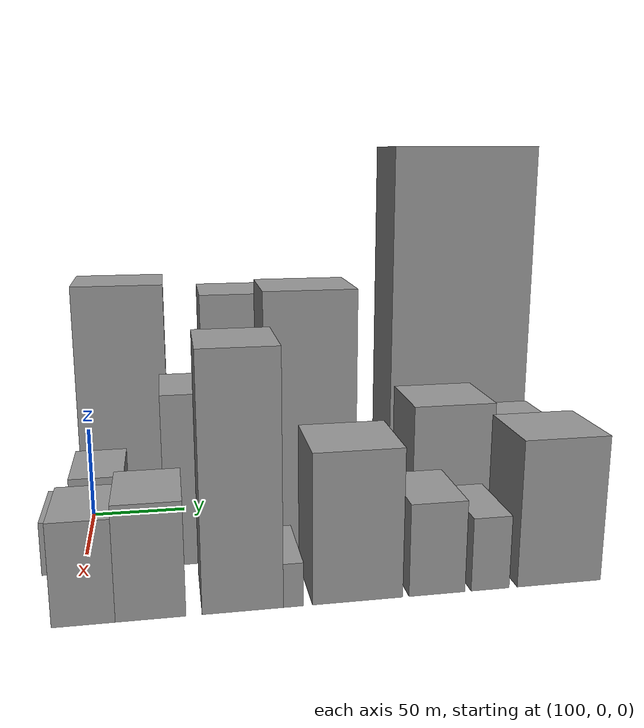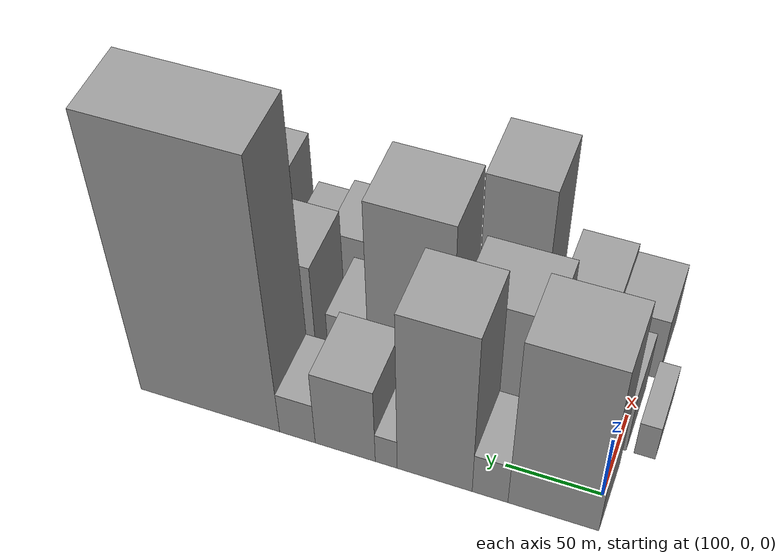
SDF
<sdf version="1.6">
 <world name="default">
  <model name="building_15">
   <static>1</static>
   <pose>100.0000 19.6133 0 0.000000 0.000000 0.000000</pose>
   <link name="link">
    <pose>0 0 66.00 0 0 0</pose>
    <collision name="collision"><geometry><box><size>40.0000 46.2009 132.0000</size></box></geometry></collision>
    <visual name="visual">
     <cast_shadows>0</cast_shadows>
     <geometry><box><size>40.0000 46.2009 132.0000</size></box></geometry>
     <material>
      <script>
       <uri>model://grey_wall/materials/scripts</uri>
       <uri>model://grey_wall/materials/textures</uri>
       <name>vrc/grey_wall</name>
      </script>
     </material>
    </visual>
   </link>
  </model>
  <model name="building_16">
   <static>1</static>
   <pose>100.0000 51.9696 0 0.000000 0.000000 0.000000</pose>
   <link name="link">
    <pose>0 0 16.50 0 0 0</pose>
    <collision name="collision"><geometry><box><size>40.0000 18.5116 33.0000</size></box></geometry></collision>
    <visual name="visual">
     <cast_shadows>0</cast_shadows>
     <geometry><box><size>40.0000 18.5116 33.0000</size></box></geometry>
     <material>
      <script>
       <uri>model://grey_wall/materials/scripts</uri>
       <uri>model://grey_wall/materials/textures</uri>
       <name>vrc/grey_wall</name>
      </script>
     </material>
    </visual>
   </link>
  </model>
  <model name="building_17">
   <static>1</static>
   <pose>100.0000 80.9882 0 0.000000 0.000000 0.000000</pose>
   <link name="link">
    <pose>0 0 63.00 0 0 0</pose>
    <collision name="collision"><geometry><box><size>40.0000 39.5256 126.0000</size></box></geometry></collision>
    <visual name="visual">
     <cast_shadows>0</cast_shadows>
     <geometry><box><size>40.0000 39.5256 126.0000</size></box></geometry>
     <material>
      <script>
       <uri>model://grey_wall/materials/scripts</uri>
       <uri>model://grey_wall/materials/textures</uri>
       <name>vrc/grey_wall</name>
      </script>
     </material>
    </visual>
   </link>
  </model>
  <model name="building_18">
   <static>1</static>
   <pose>100.0000 106.6039 0 0.000000 0.000000 0.000000</pose>
   <link name="link">
    <pose>0 0 12.00 0 0 0</pose>
    <collision name="collision"><geometry><box><size>40.0000 11.7060 24.0000</size></box></geometry></collision>
    <visual name="visual">
     <cast_shadows>0</cast_shadows>
     <geometry><box><size>40.0000 11.7060 24.0000</size></box></geometry>
     <material>
      <script>
       <uri>model://grey_wall/materials/scripts</uri>
       <uri>model://grey_wall/materials/textures</uri>
       <name>vrc/grey_wall</name>
      </script>
     </material>
    </visual>
   </link>
  </model>
  <model name="building_19">
   <static>1</static>
   <pose>100.0000 128.7293 0 0.000000 0.000000 0.000000</pose>
   <link name="link">
    <pose>0 0 30.00 0 0 0</pose>
    <collision name="collision"><geometry><box><size>40.0000 32.5449 60.0000</size></box></geometry></collision>
    <visual name="visual">
     <cast_shadows>0</cast_shadows>
     <geometry><box><size>40.0000 32.5449 60.0000</size></box></geometry>
     <material>
      <script>
       <uri>model://grey_wall/materials/scripts</uri>
       <uri>model://grey_wall/materials/textures</uri>
       <name>vrc/grey_wall</name>
      </script>
     </material>
    </visual>
   </link>
  </model>
  <model name="building_20">
   <static>1</static>
   <pose>100.0000 154.8038 0 0.000000 0.000000 0.000000</pose>
   <link name="link">
    <pose>0 0 16.50 0 0 0</pose>
    <collision name="collision"><geometry><box><size>40.0000 19.6040 33.0000</size></box></geometry></collision>
    <visual name="visual">
     <cast_shadows>0</cast_shadows>
     <geometry><box><size>40.0000 19.6040 33.0000</size></box></geometry>
     <material>
      <script>
       <uri>model://grey_wall/materials/scripts</uri>
       <uri>model://grey_wall/materials/textures</uri>
       <name>vrc/grey_wall</name>
      </script>
     </material>
    </visual>
   </link>
  </model>
  <model name="building_21">
   <static>1</static>
   <pose>100.0000 203.8623 0 0.000000 0.000000 0.000000</pose>
   <link name="link">
    <pose>0 0 100.50 0 0 0</pose>
    <collision name="collision"><geometry><box><size>40.0000 78.5130 201.0000</size></box></geometry></collision>
    <visual name="visual">
     <cast_shadows>0</cast_shadows>
     <geometry><box><size>40.0000 78.5130 201.0000</size></box></geometry>
     <material>
      <script>
       <uri>model://grey_wall/materials/scripts</uri>
       <uri>model://grey_wall/materials/textures</uri>
       <name>vrc/grey_wall</name>
      </script>
     </material>
    </visual>
   </link>
  </model>
  <model name="building_44">
   <static>1</static>
   <pose>149.0000 -14.0285 0 0.000000 0.000000 0.000000</pose>
   <link name="link">
    <pose>0 0 13.50 0 0 0</pose>
    <collision name="collision"><geometry><box><size>40.0000 11.0180 27.0000</size></box></geometry></collision>
    <visual name="visual">
     <cast_shadows>0</cast_shadows>
     <geometry><box><size>40.0000 11.0180 27.0000</size></box></geometry>
     <material>
      <script>
       <uri>model://grey_wall/materials/scripts</uri>
       <uri>model://grey_wall/materials/textures</uri>
       <name>vrc/grey_wall</name>
      </script>
     </material>
    </visual>
   </link>
  </model>
  <model name="building_45">
   <static>1</static>
   <pose>149.0000 8.3008 0 0.000000 0.000000 0.000000</pose>
   <link name="link">
    <pose>0 0 24.00 0 0 0</pose>
    <collision name="collision"><geometry><box><size>40.0000 25.6407 48.0000</size></box></geometry></collision>
    <visual name="visual">
     <cast_shadows>0</cast_shadows>
     <geometry><box><size>40.0000 25.6407 48.0000</size></box></geometry>
     <material>
      <script>
       <uri>model://grey_wall/materials/scripts</uri>
       <uri>model://grey_wall/materials/textures</uri>
       <name>vrc/grey_wall</name>
      </script>
     </material>
    </visual>
   </link>
  </model>
  <model name="building_46">
   <static>1</static>
   <pose>149.0000 27.7729 0 0.000000 0.000000 0.000000</pose>
   <link name="link">
    <pose>0 0 13.50 0 0 0</pose>
    <collision name="collision"><geometry><box><size>40.0000 13.3035 27.0000</size></box></geometry></collision>
    <visual name="visual">
     <cast_shadows>0</cast_shadows>
     <geometry><box><size>40.0000 13.3035 27.0000</size></box></geometry>
     <material>
      <script>
       <uri>model://grey_wall/materials/scripts</uri>
       <uri>model://grey_wall/materials/textures</uri>
       <name>vrc/grey_wall</name>
      </script>
     </material>
    </visual>
   </link>
  </model>
  <model name="building_47">
   <static>1</static>
   <pose>149.0000 62.6030 0 0.000000 0.000000 0.000000</pose>
   <link name="link">
    <pose>0 0 43.50 0 0 0</pose>
    <collision name="collision"><geometry><box><size>40.0000 46.3568 87.0000</size></box></geometry></collision>
    <visual name="visual">
     <cast_shadows>0</cast_shadows>
     <geometry><box><size>40.0000 46.3568 87.0000</size></box></geometry>
     <material>
      <script>
       <uri>model://grey_wall/materials/scripts</uri>
       <uri>model://grey_wall/materials/textures</uri>
       <name>vrc/grey_wall</name>
      </script>
     </material>
    </visual>
   </link>
  </model>
  <model name="building_48">
   <static>1</static>
   <pose>149.0000 111.6222 0 0.000000 0.000000 0.000000</pose>
   <link name="link">
    <pose>0 0 67.50 0 0 0</pose>
    <collision name="collision"><geometry><box><size>40.0000 45.6815 135.0000</size></box></geometry></collision>
    <visual name="visual">
     <cast_shadows>0</cast_shadows>
     <geometry><box><size>40.0000 45.6815 135.0000</size></box></geometry>
     <material>
      <script>
       <uri>model://grey_wall/materials/scripts</uri>
       <uri>model://grey_wall/materials/textures</uri>
       <name>vrc/grey_wall</name>
      </script>
     </material>
    </visual>
   </link>
  </model>
  <model name="building_49">
   <static>1</static>
   <pose>149.0000 145.8154 0 0.000000 0.000000 0.000000</pose>
   <link name="link">
    <pose>0 0 21.00 0 0 0</pose>
    <collision name="collision"><geometry><box><size>40.0000 22.7050 42.0000</size></box></geometry></collision>
    <visual name="visual">
     <cast_shadows>0</cast_shadows>
     <geometry><box><size>40.0000 22.7050 42.0000</size></box></geometry>
     <material>
      <script>
       <uri>model://grey_wall/materials/scripts</uri>
       <uri>model://grey_wall/materials/textures</uri>
       <name>vrc/grey_wall</name>
      </script>
     </material>
    </visual>
   </link>
  </model>
  <model name="building_50">
   <static>1</static>
   <pose>149.0000 185.4181 0 0.000000 0.000000 0.000000</pose>
   <link name="link">
    <pose>0 0 37.50 0 0 0</pose>
    <collision name="collision"><geometry><box><size>40.0000 42.5003 75.0000</size></box></geometry></collision>
    <visual name="visual">
     <cast_shadows>0</cast_shadows>
     <geometry><box><size>40.0000 42.5003 75.0000</size></box></geometry>
     <material>
      <script>
       <uri>model://grey_wall/materials/scripts</uri>
       <uri>model://grey_wall/materials/textures</uri>
       <name>vrc/grey_wall</name>
      </script>
     </material>
    </visual>
   </link>
  </model>
  <model name="building_51">
   <static>1</static>
   <pose>149.0000 223.2690 0 0.000000 0.000000 0.000000</pose>
   <link name="link">
    <pose>0 0 31.50 0 0 0</pose>
    <collision name="collision"><geometry><box><size>40.0000 33.2016 63.0000</size></box></geometry></collision>
    <visual name="visual">
     <cast_shadows>0</cast_shadows>
     <geometry><box><size>40.0000 33.2016 63.0000</size></box></geometry>
     <material>
      <script>
       <uri>model://grey_wall/materials/scripts</uri>
       <uri>model://grey_wall/materials/textures</uri>
       <name>vrc/grey_wall</name>
      </script>
     </material>
    </visual>
   </link>
  </model>
  <model name="building_80">
   <static>1</static>
   <pose>198.0000 4.0115 0 0.000000 0.000000 0.000000</pose>
   <link name="link">
    <pose>0 0 24.00 0 0 0</pose>
    <collision name="collision"><geometry><box><size>40.0000 26.8633 48.0000</size></box></geometry></collision>
    <visual name="visual">
     <cast_shadows>0</cast_shadows>
     <geometry><box><size>40.0000 26.8633 48.0000</size></box></geometry>
     <material>
      <script>
       <uri>model://grey_wall/materials/scripts</uri>
       <uri>model://grey_wall/materials/textures</uri>
       <name>vrc/grey_wall</name>
      </script>
     </material>
    </visual>
   </link>
  </model>
  <model name="building_81">
   <static>1</static>
   <pose>198.0000 32.6216 0 0.000000 0.000000 0.000000</pose>
   <link name="link">
    <pose>0 0 27.00 0 0 0</pose>
    <collision name="collision"><geometry><box><size>40.0000 30.3568 54.0000</size></box></geometry></collision>
    <visual name="visual">
     <cast_shadows>0</cast_shadows>
     <geometry><box><size>40.0000 30.3568 54.0000</size></box></geometry>
     <material>
      <script>
       <uri>model://grey_wall/materials/scripts</uri>
       <uri>model://grey_wall/materials/textures</uri>
       <name>vrc/grey_wall</name>
      </script>
     </material>
    </visual>
   </link>
  </model>
  <model name="building_82">
   <static>1</static>
   <pose>198.0000 72.8680 0 0.000000 0.000000 0.000000</pose>
   <link name="link">
    <pose>0 0 60.00 0 0 0</pose>
    <collision name="collision"><geometry><box><size>40.0000 36.1361 120.0000</size></box></geometry></collision>
    <visual name="visual">
     <cast_shadows>0</cast_shadows>
     <geometry><box><size>40.0000 36.1361 120.0000</size></box></geometry>
     <material>
      <script>
       <uri>model://grey_wall/materials/scripts</uri>
       <uri>model://grey_wall/materials/textures</uri>
       <name>vrc/grey_wall</name>
      </script>
     </material>
    </visual>
   </link>
  </model>
  <model name="building_83">
   <static>1</static>
   <pose>198.0000 95.5000 0 0.000000 0.000000 0.000000</pose>
   <link name="link">
    <pose>0 0 10.50 0 0 0</pose>
    <collision name="collision"><geometry><box><size>40.0000 9.1279 21.0000</size></box></geometry></collision>
    <visual name="visual">
     <cast_shadows>0</cast_shadows>
     <geometry><box><size>40.0000 9.1279 21.0000</size></box></geometry>
     <material>
      <script>
       <uri>model://grey_wall/materials/scripts</uri>
       <uri>model://grey_wall/materials/textures</uri>
       <name>vrc/grey_wall</name>
      </script>
     </material>
    </visual>
   </link>
  </model>
  <model name="building_84">
   <static>1</static>
   <pose>198.0000 125.0189 0 0.000000 0.000000 0.000000</pose>
   <link name="link">
    <pose>0 0 36.00 0 0 0</pose>
    <collision name="collision"><geometry><box><size>40.0000 41.9098 72.0000</size></box></geometry></collision>
    <visual name="visual">
     <cast_shadows>0</cast_shadows>
     <geometry><box><size>40.0000 41.9098 72.0000</size></box></geometry>
     <material>
      <script>
       <uri>model://grey_wall/materials/scripts</uri>
       <uri>model://grey_wall/materials/textures</uri>
       <name>vrc/grey_wall</name>
      </script>
     </material>
    </visual>
   </link>
  </model>
  <model name="building_85">
   <static>1</static>
   <pose>198.0000 162.3603 0 0.000000 0.000000 0.000000</pose>
   <link name="link">
    <pose>0 0 22.50 0 0 0</pose>
    <collision name="collision"><geometry><box><size>40.0000 26.7731 45.0000</size></box></geometry></collision>
    <visual name="visual">
     <cast_shadows>0</cast_shadows>
     <geometry><box><size>40.0000 26.7731 45.0000</size></box></geometry>
     <material>
      <script>
       <uri>model://grey_wall/materials/scripts</uri>
       <uri>model://grey_wall/materials/textures</uri>
       <name>vrc/grey_wall</name>
      </script>
     </material>
    </visual>
   </link>
  </model>
  <model name="building_86">
   <static>1</static>
   <pose>198.0000 188.0313 0 0.000000 0.000000 0.000000</pose>
   <link name="link">
    <pose>0 0 18.00 0 0 0</pose>
    <collision name="collision"><geometry><box><size>40.0000 18.5689 36.0000</size></box></geometry></collision>
    <visual name="visual">
     <cast_shadows>0</cast_shadows>
     <geometry><box><size>40.0000 18.5689 36.0000</size></box></geometry>
     <material>
      <script>
       <uri>model://grey_wall/materials/scripts</uri>
       <uri>model://grey_wall/materials/textures</uri>
       <name>vrc/grey_wall</name>
      </script>
     </material>
    </visual>
   </link>
  </model>
  <model name="building_87">
   <static>1</static>
   <pose>198.0000 222.1833 0 0.000000 0.000000 0.000000</pose>
   <link name="link">
    <pose>0 0 36.00 0 0 0</pose>
    <collision name="collision"><geometry><box><size>40.0000 41.7352 72.0000</size></box></geometry></collision>
    <visual name="visual">
     <cast_shadows>0</cast_shadows>
     <geometry><box><size>40.0000 41.7352 72.0000</size></box></geometry>
     <material>
      <script>
       <uri>model://grey_wall/materials/scripts</uri>
       <uri>model://grey_wall/materials/textures</uri>
       <name>vrc/grey_wall</name>
      </script>
     </material>
    </visual>
   </link>
  </model>
 </world>
</sdf>
